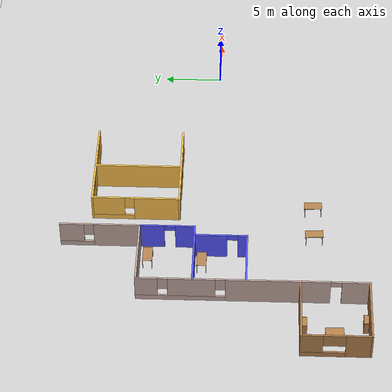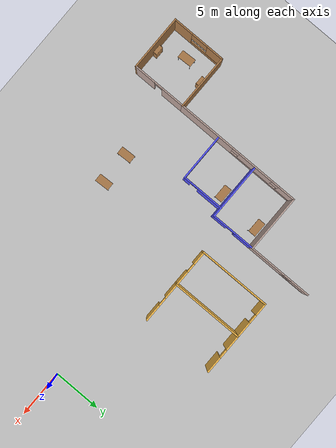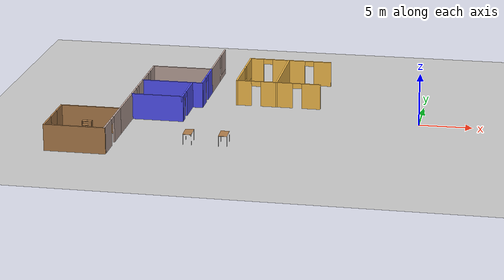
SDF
<sdf version="1.6">
 <world name="default">
  <model name="ground_plane">
   <static>1</static>
   <link name="link">
    <collision name="collision">
     <geometry><plane><normal>0 0 1</normal><size>100 100</size></plane></geometry>
     <surface><friction><ode><mu>100</mu><mu2>50</mu2></ode></friction></surface>
    </collision>
    <visual name="visual">
     <cast_shadows>0</cast_shadows>
     <geometry><plane><normal>0 0 1</normal><size>100 100</size></plane></geometry>
     <material>
      <script><uri>file://media/materials/scripts/gazebo.material</uri><name>Gazebo/Grey</name></script>
     </material>
    </visual>
   </link>
  </model>
  <model name="Building">
   <pose>-10.6691 -0.0294 0 0 -0 0</pose>
   <link name="Wall_163">
    <collision name="Wall_163_Collision">
     <geometry><box><size>5.75 0.15 2.5</size></box></geometry>
     <pose>0 0 1.25 0 -0 0</pose>
    </collision>
    <visual name="Wall_163_Visual">
     <pose>0 0 1.25 0 -0 0</pose>
     <geometry><box><size>5.75 0.15 2.5</size></box></geometry>
     <material>
      <script><uri>file://media/materials/scripts/gazebo.material</uri><name>Gazebo/Wood</name></script>
      <ambient>0.760784 0.662745 0.627451 1</ambient>
     </material>
     <meta><layer>0</layer></meta>
    </visual>
    <pose>-19.1357 -7.15926 0 0 -0 0</pose>
   </link>
   <link name="Wall_164">
    <pose>-16.3357 -0.484261 0 0 -0 1.5708</pose>
    <visual name="Wall_164_Visual_0">
     <pose>-3.67658 0 1.25 0 -0 0</pose>
     <geometry><box><size>6.14683 0.15 2.5</size></box></geometry>
     <material>
      <script><uri>file://media/materials/scripts/gazebo.material</uri><name>Gazebo/Grey</name></script>
      <ambient>0.760784 0.662745 0.627451 1</ambient>
     </material>
     <meta><layer>0</layer></meta>
    </visual>
    <collision name="Wall_164_Collision_0">
     <geometry><box><size>6.14683 0.15 2.5</size></box></geometry>
     <pose>-3.67658 0 1.25 0 -0 0</pose>
    </collision>
    <visual name="Wall_164_Visual_1">
     <pose>3.07342 0 0.25 0 -0 0</pose>
     <geometry><box><size>7.35317 0.15 0.5</size></box></geometry>
     <material>
      <script><uri>file://media/materials/scripts/gazebo.material</uri><name>Gazebo/Grey</name></script>
      <ambient>0.760784 0.662745 0.627451 1</ambient>
     </material>
     <meta><layer>0</layer></meta>
    </visual>
    <collision name="Wall_164_Collision_1">
     <geometry><box><size>7.35317 0.15 0.5</size></box></geometry>
     <pose>3.07342 0 0.25 0 -0 0</pose>
    </collision>
    <visual name="Wall_164_Visual_2">
     <pose>2.14621 0 1.5 0 -0 0</pose>
     <geometry><box><size>3.89875 0.15 2</size></box></geometry>
     <material>
      <script><uri>file://media/materials/scripts/gazebo.material</uri><name>Gazebo/Grey</name></script>
      <ambient>0.760784 0.662745 0.627451 1</ambient>
     </material>
     <meta><layer>0</layer></meta>
    </visual>
    <collision name="Wall_164_Collision_2">
     <geometry><box><size>3.89875 0.15 2</size></box></geometry>
     <pose>2.14621 0 1.5 0 -0 0</pose>
    </collision>
    <visual name="Wall_164_Visual_3">
     <pose>5.82279 0 1.5 0 -0 0</pose>
     <geometry><box><size>1.85441 0.15 2</size></box></geometry>
     <material>
      <script><uri>file://media/materials/scripts/gazebo.material</uri><name>Gazebo/Grey</name></script>
      <ambient>0.760784 0.662745 0.627451 1</ambient>
     </material>
     <meta><layer>0</layer></meta>
    </visual>
    <collision name="Wall_164_Collision_3">
     <geometry><box><size>1.85441 0.15 2</size></box></geometry>
     <pose>5.82279 0 1.5 0 -0 0</pose>
    </collision>
    <visual name="Wall_164_Visual_4">
     <pose>-0.203166 0 1.9 0 -0 0</pose>
     <geometry><box><size>0.8 0.15 1.2</size></box></geometry>
     <material>
      <script><uri>file://media/materials/scripts/gazebo.material</uri><name>Gazebo/Grey</name></script>
      <ambient>0.760784 0.662745 0.627451 1</ambient>
     </material>
     <meta><layer>0</layer></meta>
    </visual>
    <collision name="Wall_164_Collision_4">
     <geometry><box><size>0.8 0.15 1.2</size></box></geometry>
     <pose>-0.203166 0 1.9 0 -0 0</pose>
    </collision>
    <visual name="Wall_164_Visual_5">
     <pose>4.49559 0 1.9 0 -0 0</pose>
     <geometry><box><size>0.8 0.15 1.2</size></box></geometry>
     <material>
      <script><uri>file://media/materials/scripts/gazebo.material</uri><name>Gazebo/Grey</name></script>
      <ambient>0.760784 0.662745 0.627451 1</ambient>
     </material>
     <meta><layer>0</layer></meta>
    </visual>
    <collision name="Wall_164_Collision_5">
     <geometry><box><size>0.8 0.15 1.2</size></box></geometry>
     <pose>4.49559 0 1.9 0 -0 0</pose>
    </collision>
   </link>
   <link name="Wall_165">
    <collision name="Wall_165_Collision">
     <geometry><box><size>6 0.15 2.5</size></box></geometry>
     <pose>0 0 1.25 0 -0 0</pose>
    </collision>
    <visual name="Wall_165_Visual">
     <pose>0 0 1.25 0 -0 0</pose>
     <geometry><box><size>6 0.15 2.5</size></box></geometry>
     <material>
      <script><uri>file://media/materials/scripts/gazebo.material</uri><name>Gazebo/Grey</name></script>
      <ambient>0.760784 0.662745 0.627451 1</ambient>
     </material>
     <meta><layer>0</layer></meta>
    </visual>
    <pose>-13.4107 6.19074 0 0 -0 0</pose>
   </link>
   <link name="Wall_166">
    <pose>-10.4857 9.49074 0 0 -0 1.5708</pose>
    <visual name="Wall_166_Visual_0">
     <pose>-1.42072 0 1.25 0 -0 0</pose>
     <geometry><box><size>3.90856 0.15 2.5</size></box></geometry>
     <material>
      <script><uri>file://media/materials/scripts/gazebo.material</uri><name>Gazebo/Grey</name></script>
      <ambient>0.760784 0.662745 0.627451 1</ambient>
     </material>
     <meta><layer>0</layer></meta>
    </visual>
    <collision name="Wall_166_Collision_0">
     <geometry><box><size>3.90856 0.15 2.5</size></box></geometry>
     <pose>-1.42072 0 1.25 0 -0 0</pose>
    </collision>
    <visual name="Wall_166_Visual_1">
     <pose>1.95428 0 0.25 0 -0 0</pose>
     <geometry><box><size>2.84144 0.15 0.5</size></box></geometry>
     <material>
      <script><uri>file://media/materials/scripts/gazebo.material</uri><name>Gazebo/Grey</name></script>
      <ambient>0.760784 0.662745 0.627451 1</ambient>
     </material>
     <meta><layer>0</layer></meta>
    </visual>
    <collision name="Wall_166_Collision_1">
     <geometry><box><size>2.84144 0.15 0.5</size></box></geometry>
     <pose>1.95428 0 0.25 0 -0 0</pose>
    </collision>
    <visual name="Wall_166_Visual_2">
     <pose>2.35428 0 1.5 0 -0 0</pose>
     <geometry><box><size>2.04144 0.15 2</size></box></geometry>
     <material>
      <script><uri>file://media/materials/scripts/gazebo.material</uri><name>Gazebo/Grey</name></script>
      <ambient>0.760784 0.662745 0.627451 1</ambient>
     </material>
     <meta><layer>0</layer></meta>
    </visual>
    <collision name="Wall_166_Collision_2">
     <geometry><box><size>2.04144 0.15 2</size></box></geometry>
     <pose>2.35428 0 1.5 0 -0 0</pose>
    </collision>
    <visual name="Wall_166_Visual_3">
     <pose>0.933557 0 1.9 0 -0 0</pose>
     <geometry><box><size>0.8 0.15 1.2</size></box></geometry>
     <material>
      <script><uri>file://media/materials/scripts/gazebo.material</uri><name>Gazebo/Grey</name></script>
      <ambient>0.760784 0.662745 0.627451 1</ambient>
     </material>
     <meta><layer>0</layer></meta>
    </visual>
    <collision name="Wall_166_Collision_3">
     <geometry><box><size>0.8 0.15 1.2</size></box></geometry>
     <pose>0.933557 0 1.9 0 -0 0</pose>
    </collision>
   </link>
   <link name="Wall_189">
    <pose>-16.3357 -9.95926 0 0 0 -1.5708</pose>
    <visual name="Wall_189_Visual_0">
     <pose>-1.62092 0 1.25 0 -0 0</pose>
     <geometry><box><size>2.50815 0.15 2.5</size></box></geometry>
     <material>
      <script><uri>file://media/materials/scripts/gazebo.material</uri><name>Gazebo/Grey</name></script>
      <ambient>0.760784 0.662745 0.627451 1</ambient>
     </material>
     <meta><layer>0</layer></meta>
    </visual>
    <collision name="Wall_189_Collision_0">
     <geometry><box><size>2.50815 0.15 2.5</size></box></geometry>
     <pose>-1.62092 0 1.25 0 -0 0</pose>
    </collision>
    <visual name="Wall_189_Visual_1">
     <pose>1.70408 0 1.25 0 -0 0</pose>
     <geometry><box><size>2.34185 0.15 2.5</size></box></geometry>
     <material>
      <script><uri>file://media/materials/scripts/gazebo.material</uri><name>Gazebo/Grey</name></script>
      <ambient>0.760784 0.662745 0.627451 1</ambient>
     </material>
     <meta><layer>0</layer></meta>
    </visual>
    <collision name="Wall_189_Collision_1">
     <geometry><box><size>2.34185 0.15 2.5</size></box></geometry>
     <pose>1.70408 0 1.25 0 -0 0</pose>
    </collision>
    <visual name="Wall_189_Visual_2">
     <pose>0.083151 0 2.25 0 -0 0</pose>
     <geometry><box><size>0.9 0.15 0.5</size></box></geometry>
     <material>
      <script><uri>file://media/materials/scripts/gazebo.material</uri><name>Gazebo/Grey</name></script>
      <ambient>0.760784 0.662745 0.627451 1</ambient>
     </material>
     <meta><layer>0</layer></meta>
    </visual>
    <collision name="Wall_189_Collision_2">
     <geometry><box><size>0.9 0.15 0.5</size></box></geometry>
     <pose>0.083151 0 2.25 0 -0 0</pose>
    </collision>
   </link>
   <link name="Wall_191">
    <pose>-10.4857 3.89074 0 0 0 -1.5708</pose>
    <visual name="Wall_191_Visual_0">
     <pose>-1.3027 0 1.25 0 -0 0</pose>
     <geometry><box><size>2.14459 0.15 2.5</size></box></geometry>
     <material>
      <script><uri>file://media/materials/scripts/gazebo.material</uri><name>Gazebo/Grey</name></script>
      <ambient>0.333333 0.333333 1 1</ambient>
     </material>
     <meta><layer>0</layer></meta>
    </visual>
    <collision name="Wall_191_Collision_0">
     <geometry><box><size>2.14459 0.15 2.5</size></box></geometry>
     <pose>-1.3027 0 1.25 0 -0 0</pose>
    </collision>
    <visual name="Wall_191_Visual_1">
     <pose>1.5223 0 1.25 0 -0 0</pose>
     <geometry><box><size>1.70541 0.15 2.5</size></box></geometry>
     <material>
      <script><uri>file://media/materials/scripts/gazebo.material</uri><name>Gazebo/Grey</name></script>
      <ambient>0.333333 0.333333 1 1</ambient>
     </material>
     <meta><layer>0</layer></meta>
    </visual>
    <collision name="Wall_191_Collision_1">
     <geometry><box><size>1.70541 0.15 2.5</size></box></geometry>
     <pose>1.5223 0 1.25 0 -0 0</pose>
    </collision>
    <visual name="Wall_191_Visual_2">
     <pose>0.219593 0 2.25 0 -0 0</pose>
     <geometry><box><size>0.9 0.15 0.5</size></box></geometry>
     <material>
      <script><uri>file://media/materials/scripts/gazebo.material</uri><name>Gazebo/Grey</name></script>
      <ambient>0.333333 0.333333 1 1</ambient>
     </material>
     <meta><layer>0</layer></meta>
    </visual>
    <collision name="Wall_191_Collision_2">
     <geometry><box><size>0.9 0.15 0.5</size></box></geometry>
     <pose>0.219593 0 2.25 0 -0 0</pose>
    </collision>
   </link>
   <link name="Wall_192">
    <collision name="Wall_192_Collision">
     <geometry><box><size>6 0.15 2.5</size></box></geometry>
     <pose>0 0 1.25 0 -0 0</pose>
    </collision>
    <visual name="Wall_192_Visual">
     <pose>0 0 1.25 0 -0 0</pose>
     <geometry><box><size>6 0.15 2.5</size></box></geometry>
     <material>
      <script><uri>file://media/materials/scripts/gazebo.material</uri><name>Gazebo/Grey</name></script>
      <ambient>0.333333 0.333333 1 1</ambient>
     </material>
     <meta><layer>0</layer></meta>
    </visual>
    <pose>-13.4107 1.59074 0 0 -0 3.14159</pose>
   </link>
   <link name="Wall_195">
    <pose>-11.4405 -0.589546 0 0 0 -1.5708</pose>
    <visual name="Wall_195_Visual_0">
     <pose>-0.865202 0 1.25 0 -0 0</pose>
     <geometry><box><size>2.76959 0.15 2.5</size></box></geometry>
     <material>
      <script><uri>file://media/materials/scripts/gazebo.material</uri><name>Gazebo/Grey</name></script>
      <ambient>0.333333 0.333333 1 1</ambient>
     </material>
     <meta><layer>0</layer></meta>
    </visual>
    <collision name="Wall_195_Collision_0">
     <geometry><box><size>2.76959 0.15 2.5</size></box></geometry>
     <pose>-0.865202 0 1.25 0 -0 0</pose>
    </collision>
    <visual name="Wall_195_Visual_1">
     <pose>1.8348 0 1.25 0 -0 0</pose>
     <geometry><box><size>0.830405 0.15 2.5</size></box></geometry>
     <material>
      <script><uri>file://media/materials/scripts/gazebo.material</uri><name>Gazebo/Grey</name></script>
      <ambient>0.333333 0.333333 1 1</ambient>
     </material>
     <meta><layer>0</layer></meta>
    </visual>
    <collision name="Wall_195_Collision_1">
     <geometry><box><size>0.830405 0.15 2.5</size></box></geometry>
     <pose>1.8348 0 1.25 0 -0 0</pose>
    </collision>
    <visual name="Wall_195_Visual_2">
     <pose>0.969595 0 2.25 0 -0 0</pose>
     <geometry><box><size>0.9 0.15 0.5</size></box></geometry>
     <material>
      <script><uri>file://media/materials/scripts/gazebo.material</uri><name>Gazebo/Grey</name></script>
      <ambient>0.333333 0.333333 1 1</ambient>
     </material>
     <meta><layer>0</layer></meta>
    </visual>
    <collision name="Wall_195_Collision_2">
     <geometry><box><size>0.9 0.15 0.5</size></box></geometry>
     <pose>0.969595 0 2.25 0 -0 0</pose>
    </collision>
   </link>
   <link name="Wall_196">
    <collision name="Wall_196_Collision">
     <geometry><box><size>5 0.15 2.5</size></box></geometry>
     <pose>0 0 1.25 0 -0 0</pose>
    </collision>
    <visual name="Wall_196_Visual">
     <pose>0 0 1.25 0 -0 0</pose>
     <geometry><box><size>5 0.15 2.5</size></box></geometry>
     <material>
      <script><uri>file://media/materials/scripts/gazebo.material</uri><name>Gazebo/Grey</name></script>
      <ambient>0.333333 0.333333 1 1</ambient>
     </material>
     <meta><layer>0</layer></meta>
    </visual>
    <pose>-13.8655 -2.76455 0 0 -0 3.14159</pose>
   </link>
   <link name="Wall_198">
    <pose>-3.28091 10.3897 0 0 -0 0</pose>
    <visual name="Wall_198_Visual_0">
     <pose>-3.41952 0 1.25 0 -0 0</pose>
     <geometry><box><size>1.41095 0.15 2.5</size></box></geometry>
     <material>
      <script><uri>file://media/materials/scripts/gazebo.material</uri><name>Gazebo/Grey</name></script>
      <ambient>1 0.764706 0.305882 1</ambient>
     </material>
     <meta><layer>0</layer></meta>
    </visual>
    <collision name="Wall_198_Collision_0">
     <geometry><box><size>1.41095 0.15 2.5</size></box></geometry>
     <pose>-3.41952 0 1.25 0 -0 0</pose>
    </collision>
    <visual name="Wall_198_Visual_1">
     <pose>-0.169807 0 1.25 0 -0 0</pose>
     <geometry><box><size>3.28848 0.15 2.5</size></box></geometry>
     <material>
      <script><uri>file://media/materials/scripts/gazebo.material</uri><name>Gazebo/Grey</name></script>
      <ambient>1 0.764706 0.305882 1</ambient>
     </material>
     <meta><layer>0</layer></meta>
    </visual>
    <collision name="Wall_198_Collision_1">
     <geometry><box><size>3.28848 0.15 2.5</size></box></geometry>
     <pose>-0.169807 0 1.25 0 -0 0</pose>
    </collision>
    <visual name="Wall_198_Visual_2">
     <pose>3.24972 0 1.25 0 -0 0</pose>
     <geometry><box><size>1.75057 0.15 2.5</size></box></geometry>
     <material>
      <script><uri>file://media/materials/scripts/gazebo.material</uri><name>Gazebo/Grey</name></script>
      <ambient>1 0.764706 0.305882 1</ambient>
     </material>
     <meta><layer>0</layer></meta>
    </visual>
    <collision name="Wall_198_Collision_2">
     <geometry><box><size>1.75057 0.15 2.5</size></box></geometry>
     <pose>3.24972 0 1.25 0 -0 0</pose>
    </collision>
    <visual name="Wall_198_Visual_3">
     <pose>-2.26405 0 2.25 0 -0 0</pose>
     <geometry><box><size>0.9 0.15 0.5</size></box></geometry>
     <material>
      <script><uri>file://media/materials/scripts/gazebo.material</uri><name>Gazebo/Grey</name></script>
      <ambient>1 0.764706 0.305882 1</ambient>
     </material>
     <meta><layer>0</layer></meta>
    </visual>
    <collision name="Wall_198_Collision_3">
     <geometry><box><size>0.9 0.15 0.5</size></box></geometry>
     <pose>-2.26405 0 2.25 0 -0 0</pose>
    </collision>
    <visual name="Wall_198_Visual_4">
     <pose>1.92443 0 2.25 0 -0 0</pose>
     <geometry><box><size>0.9 0.15 0.5</size></box></geometry>
     <material>
      <script><uri>file://media/materials/scripts/gazebo.material</uri><name>Gazebo/Grey</name></script>
      <ambient>1 0.764706 0.305882 1</ambient>
     </material>
     <meta><layer>0</layer></meta>
    </visual>
    <collision name="Wall_198_Collision_4">
     <geometry><box><size>0.9 0.15 0.5</size></box></geometry>
     <pose>1.92443 0 2.25 0 -0 0</pose>
    </collision>
   </link>
   <link name="Wall_200">
    <pose>-3.27064 3.03973 0 0 -0 3.14159</pose>
    <visual name="Wall_200_Visual_0">
     <pose>-3.22332 0 1.25 0 -0 0</pose>
     <geometry><box><size>1.80336 0.15 2.5</size></box></geometry>
     <material>
      <script><uri>file://media/materials/scripts/gazebo.material</uri><name>Gazebo/Grey</name></script>
      <ambient>1 0.764706 0.305882 1</ambient>
     </material>
     <meta><layer>0</layer></meta>
    </visual>
    <collision name="Wall_200_Collision_0">
     <geometry><box><size>1.80336 0.15 2.5</size></box></geometry>
     <pose>-3.22332 0 1.25 0 -0 0</pose>
    </collision>
    <visual name="Wall_200_Visual_1">
     <pose>0.148188 0 1.25 0 -0 0</pose>
     <geometry><box><size>3.13965 0.15 2.5</size></box></geometry>
     <material>
      <script><uri>file://media/materials/scripts/gazebo.material</uri><name>Gazebo/Grey</name></script>
      <ambient>1 0.764706 0.305882 1</ambient>
     </material>
     <meta><layer>0</layer></meta>
    </visual>
    <collision name="Wall_200_Collision_1">
     <geometry><box><size>3.13965 0.15 2.5</size></box></geometry>
     <pose>0.148188 0 1.25 0 -0 0</pose>
    </collision>
    <visual name="Wall_200_Visual_2">
     <pose>3.37151 0 1.25 0 -0 0</pose>
     <geometry><box><size>1.50699 0.15 2.5</size></box></geometry>
     <material>
      <script><uri>file://media/materials/scripts/gazebo.material</uri><name>Gazebo/Grey</name></script>
      <ambient>1 0.764706 0.305882 1</ambient>
     </material>
     <meta><layer>0</layer></meta>
    </visual>
    <collision name="Wall_200_Collision_2">
     <geometry><box><size>1.50699 0.15 2.5</size></box></geometry>
     <pose>3.37151 0 1.25 0 -0 0</pose>
    </collision>
    <visual name="Wall_200_Visual_3">
     <pose>-1.87164 0 2.25 0 -0 0</pose>
     <geometry><box><size>0.9 0.15 0.5</size></box></geometry>
     <material>
      <script><uri>file://media/materials/scripts/gazebo.material</uri><name>Gazebo/Grey</name></script>
      <ambient>1 0.764706 0.305882 1</ambient>
     </material>
     <meta><layer>0</layer></meta>
    </visual>
    <collision name="Wall_200_Collision_3">
     <geometry><box><size>0.9 0.15 0.5</size></box></geometry>
     <pose>-1.87164 0 2.25 0 -0 0</pose>
    </collision>
    <visual name="Wall_200_Visual_4">
     <pose>2.16802 0 2.25 0 -0 0</pose>
     <geometry><box><size>0.9 0.15 0.5</size></box></geometry>
     <material>
      <script><uri>file://media/materials/scripts/gazebo.material</uri><name>Gazebo/Grey</name></script>
      <ambient>1 0.764706 0.305882 1</ambient>
     </material>
     <meta><layer>0</layer></meta>
    </visual>
    <collision name="Wall_200_Collision_4">
     <geometry><box><size>0.9 0.15 0.5</size></box></geometry>
     <pose>2.16802 0 2.25 0 -0 0</pose>
    </collision>
   </link>
   <link name="Wall_201">
    <pose>-7.32064 6.71473 0 0 -0 1.5708</pose>
    <visual name="Wall_201_Visual_0">
     <pose>-1.80889 0 1.25 0 -0 0</pose>
     <geometry><box><size>3.88222 0.15 2.5</size></box></geometry>
     <material>
      <script><uri>file://media/materials/scripts/gazebo.material</uri><name>Gazebo/Grey</name></script>
      <ambient>1 0.764706 0.305882 1</ambient>
     </material>
     <meta><layer>0</layer></meta>
    </visual>
    <collision name="Wall_201_Collision_0">
     <geometry><box><size>3.88222 0.15 2.5</size></box></geometry>
     <pose>-1.80889 0 1.25 0 -0 0</pose>
    </collision>
    <visual name="Wall_201_Visual_1">
     <pose>1.94111 0 0.25 0 -0 0</pose>
     <geometry><box><size>3.61778 0.15 0.5</size></box></geometry>
     <material>
      <script><uri>file://media/materials/scripts/gazebo.material</uri><name>Gazebo/Grey</name></script>
      <ambient>1 0.764706 0.305882 1</ambient>
     </material>
     <meta><layer>0</layer></meta>
    </visual>
    <collision name="Wall_201_Collision_1">
     <geometry><box><size>3.61778 0.15 0.5</size></box></geometry>
     <pose>1.94111 0 0.25 0 -0 0</pose>
    </collision>
    <visual name="Wall_201_Visual_2">
     <pose>2.34111 0 1.5 0 -0 0</pose>
     <geometry><box><size>2.81778 0.15 2</size></box></geometry>
     <material>
      <script><uri>file://media/materials/scripts/gazebo.material</uri><name>Gazebo/Grey</name></script>
      <ambient>1 0.764706 0.305882 1</ambient>
     </material>
     <meta><layer>0</layer></meta>
    </visual>
    <collision name="Wall_201_Collision_2">
     <geometry><box><size>2.81778 0.15 2</size></box></geometry>
     <pose>2.34111 0 1.5 0 -0 0</pose>
    </collision>
    <visual name="Wall_201_Visual_3">
     <pose>0.532223 0 1.9 0 -0 0</pose>
     <geometry><box><size>0.8 0.15 1.2</size></box></geometry>
     <material>
      <script><uri>file://media/materials/scripts/gazebo.material</uri><name>Gazebo/Grey</name></script>
      <ambient>1 0.764706 0.305882 1</ambient>
     </material>
     <meta><layer>0</layer></meta>
    </visual>
    <collision name="Wall_201_Collision_3">
     <geometry><box><size>0.8 0.15 1.2</size></box></geometry>
     <pose>0.532223 0 1.9 0 -0 0</pose>
    </collision>
   </link>
   <link name="Wall_204">
    <collision name="Wall_204_Collision">
     <geometry><box><size>7.5 0.15 2.5</size></box></geometry>
     <pose>0 0 1.25 0 -0 0</pose>
    </collision>
    <visual name="Wall_204_Visual">
     <pose>0 0 1.25 0 -0 0</pose>
     <geometry><box><size>7.5 0.15 2.5</size></box></geometry>
     <material>
      <script><uri>file://media/materials/scripts/gazebo.material</uri><name>Gazebo/Grey</name></script>
      <ambient>1 0.764706 0.305882 1</ambient>
     </material>
     <meta><layer>0</layer></meta>
    </visual>
    <pose>-3.44008 6.69347 0 0 0 -1.5708</pose>
   </link>
   <link name="Wall_206">
    <collision name="Wall_206_Collision">
     <geometry><box><size>5.75 0.15 2.5</size></box></geometry>
     <pose>0 0 1.25 0 -0 0</pose>
    </collision>
    <visual name="Wall_206_Visual">
     <pose>0 0 1.25 0 -0 0</pose>
     <geometry><box><size>5.75 0.15 2.5</size></box></geometry>
     <material>
      <script><uri>file://media/materials/scripts/gazebo.material</uri><name>Gazebo/Wood</name></script>
      <ambient>1 1 1 1</ambient>
     </material>
     <meta><layer>0</layer></meta>
    </visual>
    <pose>-19.1357 -12.7593 0 0 -0 3.14159</pose>
   </link>
   <link name="Wall_207">
    <pose>-21.9357 -9.95926 0 0 -0 1.5708</pose>
    <visual name="Wall_207_Visual_0">
     <pose>-1.80961 0 1.25 0 -0 0</pose>
     <geometry><box><size>2.13078 0.15 2.5</size></box></geometry>
     <material>
      <script><uri>file://media/materials/scripts/gazebo.material</uri><name>Gazebo/Wood</name></script>
      <ambient>1 1 1 1</ambient>
     </material>
     <meta><layer>0</layer></meta>
    </visual>
    <collision name="Wall_207_Collision_0">
     <geometry><box><size>2.13078 0.15 2.5</size></box></geometry>
     <pose>-1.80961 0 1.25 0 -0 0</pose>
    </collision>
    <visual name="Wall_207_Visual_1">
     <pose>1.06539 0 0.25 0 -0 0</pose>
     <geometry><box><size>3.61922 0.15 0.5</size></box></geometry>
     <material>
      <script><uri>file://media/materials/scripts/gazebo.material</uri><name>Gazebo/Wood</name></script>
      <ambient>1 1 1 1</ambient>
     </material>
     <meta><layer>0</layer></meta>
    </visual>
    <collision name="Wall_207_Collision_1">
     <geometry><box><size>3.61922 0.15 0.5</size></box></geometry>
     <pose>1.06539 0 0.25 0 -0 0</pose>
    </collision>
    <visual name="Wall_207_Visual_2">
     <pose>1.96539 0 1.5 0 -0 0</pose>
     <geometry><box><size>1.81922 0.15 2</size></box></geometry>
     <material>
      <script><uri>file://media/materials/scripts/gazebo.material</uri><name>Gazebo/Wood</name></script>
      <ambient>1 1 1 1</ambient>
     </material>
     <meta><layer>0</layer></meta>
    </visual>
    <collision name="Wall_207_Collision_2">
     <geometry><box><size>1.81922 0.15 2</size></box></geometry>
     <pose>1.96539 0 1.5 0 -0 0</pose>
    </collision>
    <visual name="Wall_207_Visual_3">
     <pose>0.155778 0 1.9 0 -0 0</pose>
     <geometry><box><size>1.8 0.15 1.2</size></box></geometry>
     <material>
      <script><uri>file://media/materials/scripts/gazebo.material</uri><name>Gazebo/Wood</name></script>
      <ambient>1 1 1 1</ambient>
     </material>
     <meta><layer>0</layer></meta>
    </visual>
    <collision name="Wall_207_Collision_3">
     <geometry><box><size>1.8 0.15 1.2</size></box></geometry>
     <pose>0.155778 0 1.9 0 -0 0</pose>
    </collision>
   </link>
   <static>1</static>
  </model>
  <model name="bookshelf">
   <static>1</static>
   <link name="link">
    <inertial><mass>1</mass></inertial>
    <collision name="back">
     <pose>0 0.005 0.6 0 -0 0</pose>
     <geometry><box><size>0.9 0.01 1.2</size></box></geometry>
    </collision>
    <visual name="visual1">
     <pose>0 0.005 0.6 0 -0 0</pose>
     <geometry><box><size>0.9 0.01 1.2</size></box></geometry>
     <material>
      <script><uri>file://media/materials/scripts/gazebo.material</uri><name>Gazebo/Wood</name></script>
     </material>
    </visual>
    <collision name="left_side">
     <pose>0.45 -0.195 0.6 0 -0 0</pose>
     <geometry><box><size>0.02 0.4 1.2</size></box></geometry>
    </collision>
    <visual name="visual2">
     <pose>0.45 -0.195 0.6 0 -0 0</pose>
     <geometry><box><size>0.02 0.4 1.2</size></box></geometry>
     <material>
      <script><uri>file://media/materials/scripts/gazebo.material</uri><name>Gazebo/Wood</name></script>
     </material>
    </visual>
    <collision name="right_side">
     <pose>-0.45 -0.195 0.6 0 -0 0</pose>
     <geometry><box><size>0.02 0.4 1.2</size></box></geometry>
    </collision>
    <visual name="visual3">
     <pose>-0.45 -0.195 0.6 0 -0 0</pose>
     <geometry><box><size>0.02 0.4 1.2</size></box></geometry>
     <material>
      <script><uri>file://media/materials/scripts/gazebo.material</uri><name>Gazebo/Wood</name></script>
     </material>
    </visual>
    <collision name="bottom">
     <pose>0 -0.195 0.03 0 -0 0</pose>
     <geometry><box><size>0.88 0.4 0.06</size></box></geometry>
    </collision>
    <visual name="visual4">
     <pose>0 -0.195 0.03 0 -0 0</pose>
     <geometry><box><size>0.88 0.4 0.06</size></box></geometry>
     <material>
      <script><uri>file://media/materials/scripts/gazebo.material</uri><name>Gazebo/Wood</name></script>
     </material>
    </visual>
    <collision name="top">
     <pose>0 -0.195 1.19 0 -0 0</pose>
     <geometry><box><size>0.88 0.4 0.02</size></box></geometry>
    </collision>
    <visual name="visual5">
     <pose>0 -0.195 1.19 0 -0 0</pose>
     <geometry><box><size>0.88 0.4 0.02</size></box></geometry>
     <material>
      <script><uri>file://media/materials/scripts/gazebo.material</uri><name>Gazebo/Wood</name></script>
     </material>
    </visual>
    <collision name="low_shelf">
     <pose>0 -0.195 0.43 0 -0 0</pose>
     <geometry><box><size>0.88 0.4 0.02</size></box></geometry>
    </collision>
    <visual name="visual6">
     <pose>0 -0.195 0.43 0 -0 0</pose>
     <geometry><box><size>0.88 0.4 0.02</size></box></geometry>
     <material>
      <script><uri>file://media/materials/scripts/gazebo.material</uri><name>Gazebo/Wood</name></script>
     </material>
    </visual>
    <collision name="high_shelf">
     <pose>0 -0.195 0.8 0 -0 0</pose>
     <geometry><box><size>0.88 0.4 0.02</size></box></geometry>
    </collision>
    <visual name="visual7">
     <pose>0 -0.195 0.8 0 -0 0</pose>
     <geometry><box><size>0.88 0.4 0.02</size></box></geometry>
     <material>
      <script><uri>file://media/materials/scripts/gazebo.material</uri><name>Gazebo/Wood</name></script>
     </material>
    </visual>
   </link>
   <pose>-30.0889 -7.32953 0 0 -0 0</pose>
  </model>
  <model name="bookshelf_0">
   <static>1</static>
   <link name="link">
    <inertial><mass>1</mass></inertial>
    <collision name="back">
     <pose>0 0.005 0.6 0 -0 0</pose>
     <geometry><box><size>0.9 0.01 1.2</size></box></geometry>
    </collision>
    <visual name="visual1">
     <pose>0 0.005 0.6 0 -0 0</pose>
     <geometry><box><size>0.9 0.01 1.2</size></box></geometry>
     <material>
      <script><uri>file://media/materials/scripts/gazebo.material</uri><name>Gazebo/Wood</name></script>
     </material>
    </visual>
    <collision name="left_side">
     <pose>0.45 -0.195 0.6 0 -0 0</pose>
     <geometry><box><size>0.02 0.4 1.2</size></box></geometry>
    </collision>
    <visual name="visual2">
     <pose>0.45 -0.195 0.6 0 -0 0</pose>
     <geometry><box><size>0.02 0.4 1.2</size></box></geometry>
     <material>
      <script><uri>file://media/materials/scripts/gazebo.material</uri><name>Gazebo/Wood</name></script>
     </material>
    </visual>
    <collision name="right_side">
     <pose>-0.45 -0.195 0.6 0 -0 0</pose>
     <geometry><box><size>0.02 0.4 1.2</size></box></geometry>
    </collision>
    <visual name="visual3">
     <pose>-0.45 -0.195 0.6 0 -0 0</pose>
     <geometry><box><size>0.02 0.4 1.2</size></box></geometry>
     <material>
      <script><uri>file://media/materials/scripts/gazebo.material</uri><name>Gazebo/Wood</name></script>
     </material>
    </visual>
    <collision name="bottom">
     <pose>0 -0.195 0.03 0 -0 0</pose>
     <geometry><box><size>0.88 0.4 0.06</size></box></geometry>
    </collision>
    <visual name="visual4">
     <pose>0 -0.195 0.03 0 -0 0</pose>
     <geometry><box><size>0.88 0.4 0.06</size></box></geometry>
     <material>
      <script><uri>file://media/materials/scripts/gazebo.material</uri><name>Gazebo/Wood</name></script>
     </material>
    </visual>
    <collision name="top">
     <pose>0 -0.195 1.19 0 -0 0</pose>
     <geometry><box><size>0.88 0.4 0.02</size></box></geometry>
    </collision>
    <visual name="visual5">
     <pose>0 -0.195 1.19 0 -0 0</pose>
     <geometry><box><size>0.88 0.4 0.02</size></box></geometry>
     <material>
      <script><uri>file://media/materials/scripts/gazebo.material</uri><name>Gazebo/Wood</name></script>
     </material>
    </visual>
    <collision name="low_shelf">
     <pose>0 -0.195 0.43 0 -0 0</pose>
     <geometry><box><size>0.88 0.4 0.02</size></box></geometry>
    </collision>
    <visual name="visual6">
     <pose>0 -0.195 0.43 0 -0 0</pose>
     <geometry><box><size>0.88 0.4 0.02</size></box></geometry>
     <material>
      <script><uri>file://media/materials/scripts/gazebo.material</uri><name>Gazebo/Wood</name></script>
     </material>
    </visual>
    <collision name="high_shelf">
     <pose>0 -0.195 0.8 0 -0 0</pose>
     <geometry><box><size>0.88 0.4 0.02</size></box></geometry>
    </collision>
    <visual name="visual7">
     <pose>0 -0.195 0.8 0 -0 0</pose>
     <geometry><box><size>0.88 0.4 0.02</size></box></geometry>
     <material>
      <script><uri>file://media/materials/scripts/gazebo.material</uri><name>Gazebo/Wood</name></script>
     </material>
    </visual>
   </link>
   <pose>-29.7585 -12.661 0 0 0 -3.13981</pose>
  </model>
  <model name="table">
   <static>1</static>
   <link name="link">
    <collision name="surface">
     <pose>0 0 1 0 -0 0</pose>
     <geometry><box><size>1.5 0.8 0.03</size></box></geometry>
     <surface><friction><ode><mu>0.6</mu><mu2>0.6</mu2></ode></friction></surface>
    </collision>
    <visual name="visual1">
     <pose>0 0 1 0 -0 0</pose>
     <geometry><box><size>1.5 0.8 0.03</size></box></geometry>
     <material>
      <script><uri>file://media/materials/scripts/gazebo.material</uri><name>Gazebo/Wood</name></script>
     </material>
    </visual>
    <collision name="front_left_leg">
     <pose>0.68 0.38 0.5 0 -0 0</pose>
     <geometry><cylinder><radius>0.02</radius><length>1</length></cylinder></geometry>
    </collision>
    <visual name="front_left_leg">
     <pose>0.68 0.38 0.5 0 -0 0</pose>
     <geometry><cylinder><radius>0.02</radius><length>1</length></cylinder></geometry>
     <material>
      <script><uri>file://media/materials/scripts/gazebo.material</uri><name>Gazebo/Grey</name></script>
     </material>
    </visual>
    <collision name="front_right_leg">
     <pose>0.68 -0.38 0.5 0 -0 0</pose>
     <geometry><cylinder><radius>0.02</radius><length>1</length></cylinder></geometry>
    </collision>
    <visual name="front_right_leg">
     <pose>0.68 -0.38 0.5 0 -0 0</pose>
     <geometry><cylinder><radius>0.02</radius><length>1</length></cylinder></geometry>
     <material>
      <script><uri>file://media/materials/scripts/gazebo.material</uri><name>Gazebo/Grey</name></script>
     </material>
    </visual>
    <collision name="back_right_leg">
     <pose>-0.68 -0.38 0.5 0 -0 0</pose>
     <geometry><cylinder><radius>0.02</radius><length>1</length></cylinder></geometry>
    </collision>
    <visual name="back_right_leg">
     <pose>-0.68 -0.38 0.5 0 -0 0</pose>
     <geometry><cylinder><radius>0.02</radius><length>1</length></cylinder></geometry>
     <material>
      <script><uri>file://media/materials/scripts/gazebo.material</uri><name>Gazebo/Grey</name></script>
     </material>
    </visual>
    <collision name="back_left_leg">
     <pose>-0.68 0.38 0.5 0 -0 0</pose>
     <geometry><cylinder><radius>0.02</radius><length>1</length></cylinder></geometry>
    </collision>
    <visual name="back_left_leg">
     <pose>-0.68 0.38 0.5 0 -0 0</pose>
     <geometry><cylinder><radius>0.02</radius><length>1</length></cylinder></geometry>
     <material>
      <script><uri>file://media/materials/scripts/gazebo.material</uri><name>Gazebo/Grey</name></script>
     </material>
    </visual>
   </link>
   <pose>-23.4179 0.930171 0 0 -0 0</pose>
  </model>
  <model name="table_0">
   <static>1</static>
   <link name="link">
    <collision name="surface">
     <pose>0 0 1 0 -0 0</pose>
     <geometry><box><size>1.5 0.8 0.03</size></box></geometry>
     <surface><friction><ode><mu>0.6</mu><mu2>0.6</mu2></ode></friction></surface>
    </collision>
    <visual name="visual1">
     <pose>0 0 1 0 -0 0</pose>
     <geometry><box><size>1.5 0.8 0.03</size></box></geometry>
     <material>
      <script><uri>file://media/materials/scripts/gazebo.material</uri><name>Gazebo/Wood</name></script>
     </material>
    </visual>
    <collision name="front_left_leg">
     <pose>0.68 0.38 0.5 0 -0 0</pose>
     <geometry><cylinder><radius>0.02</radius><length>1</length></cylinder></geometry>
    </collision>
    <visual name="front_left_leg">
     <pose>0.68 0.38 0.5 0 -0 0</pose>
     <geometry><cylinder><radius>0.02</radius><length>1</length></cylinder></geometry>
     <material>
      <script><uri>file://media/materials/scripts/gazebo.material</uri><name>Gazebo/Grey</name></script>
     </material>
    </visual>
    <collision name="front_right_leg">
     <pose>0.68 -0.38 0.5 0 -0 0</pose>
     <geometry><cylinder><radius>0.02</radius><length>1</length></cylinder></geometry>
    </collision>
    <visual name="front_right_leg">
     <pose>0.68 -0.38 0.5 0 -0 0</pose>
     <geometry><cylinder><radius>0.02</radius><length>1</length></cylinder></geometry>
     <material>
      <script><uri>file://media/materials/scripts/gazebo.material</uri><name>Gazebo/Grey</name></script>
     </material>
    </visual>
    <collision name="back_right_leg">
     <pose>-0.68 -0.38 0.5 0 -0 0</pose>
     <geometry><cylinder><radius>0.02</radius><length>1</length></cylinder></geometry>
    </collision>
    <visual name="back_right_leg">
     <pose>-0.68 -0.38 0.5 0 -0 0</pose>
     <geometry><cylinder><radius>0.02</radius><length>1</length></cylinder></geometry>
     <material>
      <script><uri>file://media/materials/scripts/gazebo.material</uri><name>Gazebo/Grey</name></script>
     </material>
    </visual>
    <collision name="back_left_leg">
     <pose>-0.68 0.38 0.5 0 -0 0</pose>
     <geometry><cylinder><radius>0.02</radius><length>1</length></cylinder></geometry>
    </collision>
    <visual name="back_left_leg">
     <pose>-0.68 0.38 0.5 0 -0 0</pose>
     <geometry><cylinder><radius>0.02</radius><length>1</length></cylinder></geometry>
     <material>
      <script><uri>file://media/materials/scripts/gazebo.material</uri><name>Gazebo/Grey</name></script>
     </material>
    </visual>
   </link>
   <pose>-23.0111 5.42595 0 0 -0 0</pose>
  </model>
  <model name="table_1">
   <static>1</static>
   <link name="link">
    <collision name="surface">
     <pose>0 0 1 0 -0 0</pose>
     <geometry><box><size>1.5 0.8 0.03</size></box></geometry>
     <surface><friction><ode><mu>0.6</mu><mu2>0.6</mu2></ode></friction></surface>
    </collision>
    <visual name="visual1">
     <pose>0 0 1 0 -0 0</pose>
     <geometry><box><size>1.5 0.8 0.03</size></box></geometry>
     <material>
      <script><uri>file://media/materials/scripts/gazebo.material</uri><name>Gazebo/Wood</name></script>
     </material>
    </visual>
    <collision name="front_left_leg">
     <pose>0.68 0.38 0.5 0 -0 0</pose>
     <geometry><cylinder><radius>0.02</radius><length>1</length></cylinder></geometry>
    </collision>
    <visual name="front_left_leg">
     <pose>0.68 0.38 0.5 0 -0 0</pose>
     <geometry><cylinder><radius>0.02</radius><length>1</length></cylinder></geometry>
     <material>
      <script><uri>file://media/materials/scripts/gazebo.material</uri><name>Gazebo/Grey</name></script>
     </material>
    </visual>
    <collision name="front_right_leg">
     <pose>0.68 -0.38 0.5 0 -0 0</pose>
     <geometry><cylinder><radius>0.02</radius><length>1</length></cylinder></geometry>
    </collision>
    <visual name="front_right_leg">
     <pose>0.68 -0.38 0.5 0 -0 0</pose>
     <geometry><cylinder><radius>0.02</radius><length>1</length></cylinder></geometry>
     <material>
      <script><uri>file://media/materials/scripts/gazebo.material</uri><name>Gazebo/Grey</name></script>
     </material>
    </visual>
    <collision name="back_right_leg">
     <pose>-0.68 -0.38 0.5 0 -0 0</pose>
     <geometry><cylinder><radius>0.02</radius><length>1</length></cylinder></geometry>
    </collision>
    <visual name="back_right_leg">
     <pose>-0.68 -0.38 0.5 0 -0 0</pose>
     <geometry><cylinder><radius>0.02</radius><length>1</length></cylinder></geometry>
     <material>
      <script><uri>file://media/materials/scripts/gazebo.material</uri><name>Gazebo/Grey</name></script>
     </material>
    </visual>
    <collision name="back_left_leg">
     <pose>-0.68 0.38 0.5 0 -0 0</pose>
     <geometry><cylinder><radius>0.02</radius><length>1</length></cylinder></geometry>
    </collision>
    <visual name="back_left_leg">
     <pose>-0.68 0.38 0.5 0 -0 0</pose>
     <geometry><cylinder><radius>0.02</radius><length>1</length></cylinder></geometry>
     <material>
      <script><uri>file://media/materials/scripts/gazebo.material</uri><name>Gazebo/Grey</name></script>
     </material>
    </visual>
   </link>
   <pose>-30.9171 -9.91818 0 0 -0 1.60797</pose>
  </model>
  <model name="table_1_clone_clone_clone_1_clone">
   <static>1</static>
   <link name="link">
    <collision name="surface">
     <pose>0 0 1 0 -0 0</pose>
     <geometry><box><size>1.5 0.8 0.03</size></box></geometry>
     <surface><friction><ode><mu>0.6</mu><mu2>0.6</mu2></ode></friction></surface>
    </collision>
    <visual name="visual1">
     <pose>0 0 1 0 -0 0</pose>
     <geometry><box><size>1.5 0.8 0.03</size></box></geometry>
     <material>
      <script><uri>file://media/materials/scripts/gazebo.material</uri><name>Gazebo/Wood</name></script>
     </material>
    </visual>
    <collision name="front_left_leg">
     <pose>0.68 0.38 0.5 0 -0 0</pose>
     <geometry><cylinder><radius>0.02</radius><length>1</length></cylinder></geometry>
    </collision>
    <visual name="front_left_leg">
     <pose>0.68 0.38 0.5 0 -0 0</pose>
     <geometry><cylinder><radius>0.02</radius><length>1</length></cylinder></geometry>
     <material>
      <script><uri>file://media/materials/scripts/gazebo.material</uri><name>Gazebo/Grey</name></script>
     </material>
    </visual>
    <collision name="front_right_leg">
     <pose>0.68 -0.38 0.5 0 -0 0</pose>
     <geometry><cylinder><radius>0.02</radius><length>1</length></cylinder></geometry>
    </collision>
    <visual name="front_right_leg">
     <pose>0.68 -0.38 0.5 0 -0 0</pose>
     <geometry><cylinder><radius>0.02</radius><length>1</length></cylinder></geometry>
     <material>
      <script><uri>file://media/materials/scripts/gazebo.material</uri><name>Gazebo/Grey</name></script>
     </material>
    </visual>
    <collision name="back_right_leg">
     <pose>-0.68 -0.38 0.5 0 -0 0</pose>
     <geometry><cylinder><radius>0.02</radius><length>1</length></cylinder></geometry>
    </collision>
    <visual name="back_right_leg">
     <pose>-0.68 -0.38 0.5 0 -0 0</pose>
     <geometry><cylinder><radius>0.02</radius><length>1</length></cylinder></geometry>
     <material>
      <script><uri>file://media/materials/scripts/gazebo.material</uri><name>Gazebo/Grey</name></script>
     </material>
    </visual>
    <collision name="back_left_leg">
     <pose>-0.68 0.38 0.5 0 -0 0</pose>
     <geometry><cylinder><radius>0.02</radius><length>1</length></cylinder></geometry>
    </collision>
    <visual name="back_left_leg">
     <pose>-0.68 0.38 0.5 0 -0 0</pose>
     <geometry><cylinder><radius>0.02</radius><length>1</length></cylinder></geometry>
     <material>
      <script><uri>file://media/materials/scripts/gazebo.material</uri><name>Gazebo/Grey</name></script>
     </material>
    </visual>
   </link>
   <pose>-20.301 -8.41367 0 0 -0 1.60797</pose>
  </model>
  <model name="table_1_clone_clone_clone_1_clone_0">
   <static>1</static>
   <link name="link">
    <collision name="surface">
     <pose>0 0 1 0 -0 0</pose>
     <geometry><box><size>1.5 0.8 0.03</size></box></geometry>
     <surface><friction><ode><mu>0.6</mu><mu2>0.6</mu2></ode></friction></surface>
    </collision>
    <visual name="visual1">
     <pose>0 0 1 0 -0 0</pose>
     <geometry><box><size>1.5 0.8 0.03</size></box></geometry>
     <material>
      <script><uri>file://media/materials/scripts/gazebo.material</uri><name>Gazebo/Wood</name></script>
     </material>
    </visual>
    <collision name="front_left_leg">
     <pose>0.68 0.38 0.5 0 -0 0</pose>
     <geometry><cylinder><radius>0.02</radius><length>1</length></cylinder></geometry>
    </collision>
    <visual name="front_left_leg">
     <pose>0.68 0.38 0.5 0 -0 0</pose>
     <geometry><cylinder><radius>0.02</radius><length>1</length></cylinder></geometry>
     <material>
      <script><uri>file://media/materials/scripts/gazebo.material</uri><name>Gazebo/Grey</name></script>
     </material>
    </visual>
    <collision name="front_right_leg">
     <pose>0.68 -0.38 0.5 0 -0 0</pose>
     <geometry><cylinder><radius>0.02</radius><length>1</length></cylinder></geometry>
    </collision>
    <visual name="front_right_leg">
     <pose>0.68 -0.38 0.5 0 -0 0</pose>
     <geometry><cylinder><radius>0.02</radius><length>1</length></cylinder></geometry>
     <material>
      <script><uri>file://media/materials/scripts/gazebo.material</uri><name>Gazebo/Grey</name></script>
     </material>
    </visual>
    <collision name="back_right_leg">
     <pose>-0.68 -0.38 0.5 0 -0 0</pose>
     <geometry><cylinder><radius>0.02</radius><length>1</length></cylinder></geometry>
    </collision>
    <visual name="back_right_leg">
     <pose>-0.68 -0.38 0.5 0 -0 0</pose>
     <geometry><cylinder><radius>0.02</radius><length>1</length></cylinder></geometry>
     <material>
      <script><uri>file://media/materials/scripts/gazebo.material</uri><name>Gazebo/Grey</name></script>
     </material>
    </visual>
    <collision name="back_left_leg">
     <pose>-0.68 0.38 0.5 0 -0 0</pose>
     <geometry><cylinder><radius>0.02</radius><length>1</length></cylinder></geometry>
    </collision>
    <visual name="back_left_leg">
     <pose>-0.68 0.38 0.5 0 -0 0</pose>
     <geometry><cylinder><radius>0.02</radius><length>1</length></cylinder></geometry>
     <material>
      <script><uri>file://media/materials/scripts/gazebo.material</uri><name>Gazebo/Grey</name></script>
     </material>
    </visual>
   </link>
   <pose>-17.0064 -8.34361 0 0 -0 1.60797</pose>
  </model>
 </world>
</sdf>
